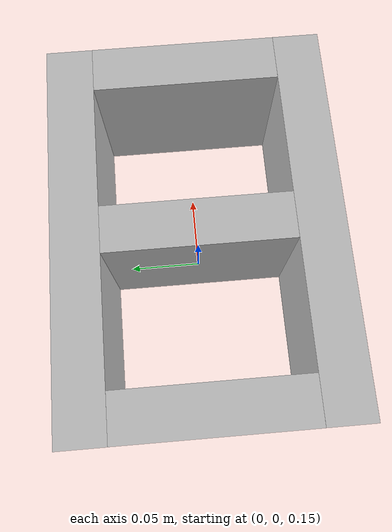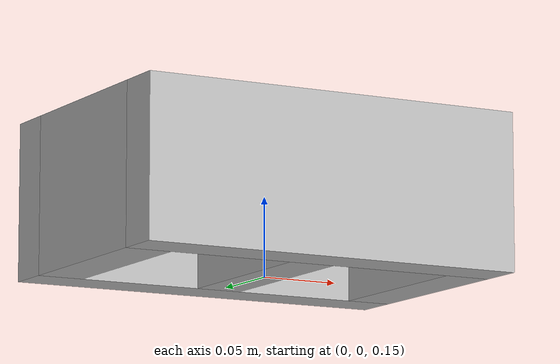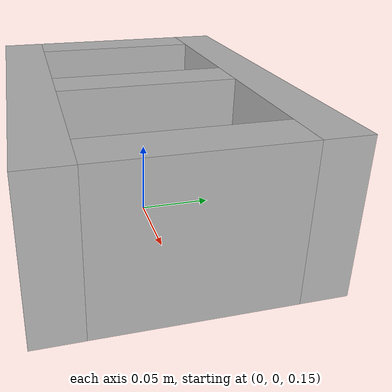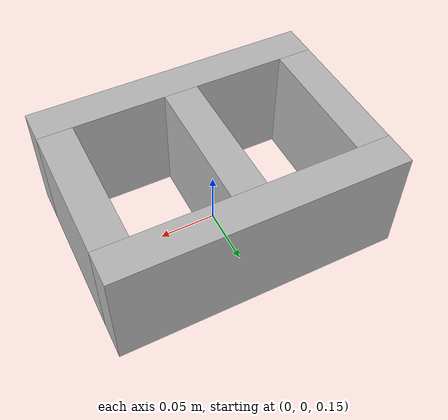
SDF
<?xml version="1.0" ?>
<sdf version="1.4">
	<model name="cinder_block">
		<link name="link">
			<pose>0 0 0.1 0 0 0</pose>
			<inertial>
				<mass>0.390</mass>
				<inertia>
					<ixx>0.00058</ixx>
					<ixy>0</ixy>
					<ixz>0</ixz>
					<iyy>0.00058</iyy>
					<iyz>0</iyz>
					<izz>0.00019</izz>
				</inertia>
			</inertial>
			<visual name="visual_left">
				<pose>0 0.075 0.1 0 0 0</pose>
				<geometry>
					<box>
						<size>0.25 0.03 0.1</size>
					</box>
				</geometry>
				<material>
					<script>
						<uri>model://cinder_block/materials/scripts</uri>
						<uri>model://cinder_block/materials/textures</uri>
						<name>CinderBlock/Diffuse</name>
					</script>
				</material>
			</visual>
			<visual name="visual_right">
				<pose>0 -0.075 0.1 0 0 0</pose>
				<geometry>
					<box>
						<size>0.25 0.03 0.1</size>
					</box>
				</geometry>
				<material>
					<script>
						<uri>model://cinder_block/materials/scripts</uri>
						<uri>model://cinder_block/materials/textures</uri>
						<name>CinderBlock/Diffuse</name>
					</script>
				</material>
			</visual>
			<visual name="visual_front">
				<pose>-0.11 0 0.1 0 0 1.57</pose>
				<geometry>
					<box>
						<size>0.12 0.03 0.1</size>
					</box>
				</geometry>
				<material>
					<script>
						<uri>model://cinder_block/materials/scripts</uri>
						<uri>model://cinder_block/materials/textures</uri>
						<name>CinderBlock/Diffuse</name>
					</script>
				</material>
			</visual>
			<visual name="visual_mid">
				<pose>0 0 0.1 0 0 1.57</pose>
				<geometry>
					<box>
						<size>0.12 0.03 0.1</size>
					</box>
				</geometry>
				<material>
					<script>
						<uri>model://cinder_block/materials/scripts</uri>
						<uri>model://cinder_block/materials/textures</uri>
						<name>CinderBlock/Diffuse</name>
					</script>
				</material>
			</visual>
			<visual name="visual_back">
				<pose>0.11 0 0.1 0 0 1.57</pose>
				<geometry>
					<box>
						<size>0.12 0.03 0.1</size>
					</box>
				</geometry>
				<material>
					<script>
						<uri>model://cinder_block/materials/scripts</uri>
						<uri>model://cinder_block/materials/textures</uri>
						<name>CinderBlock/Diffuse</name>
					</script>
				</material>
			</visual>
			<collision name="left">
				<pose>0 0.075 0.1 0 0 0</pose>
				<geometry>
					<box>
						<size>0.25 0.03 0.1</size>
					</box>
				</geometry>
			</collision>
			<collision name="right">
				<pose>0 -0.075 0.1 0 0 0</pose>
				<geometry>
					<box>
						<size>0.25 0.03 0.1</size>
					</box>
				</geometry>
			</collision>
			<collision name="front">
				<pose>-0.11 0 0.1 0 0 1.57</pose>
				<geometry>
					<box>
						<size>0.12 0.03 0.1</size>
					</box>
				</geometry>
			</collision>
			<collision name="middle">
				<pose>0 0 0.1 0 0 1.57</pose>
				<geometry>
					<box>
						<size>0.12 0.03 0.1</size>
					</box>
				</geometry>
			</collision>
			<collision name="back">
				<pose>0.11 0 0.1 0 0 1.57</pose>
				<geometry>
					<box>
						<size>0.12 0.03 0.1</size>
					</box>
				</geometry>
			</collision>
		</link>
	</model>
</sdf>
